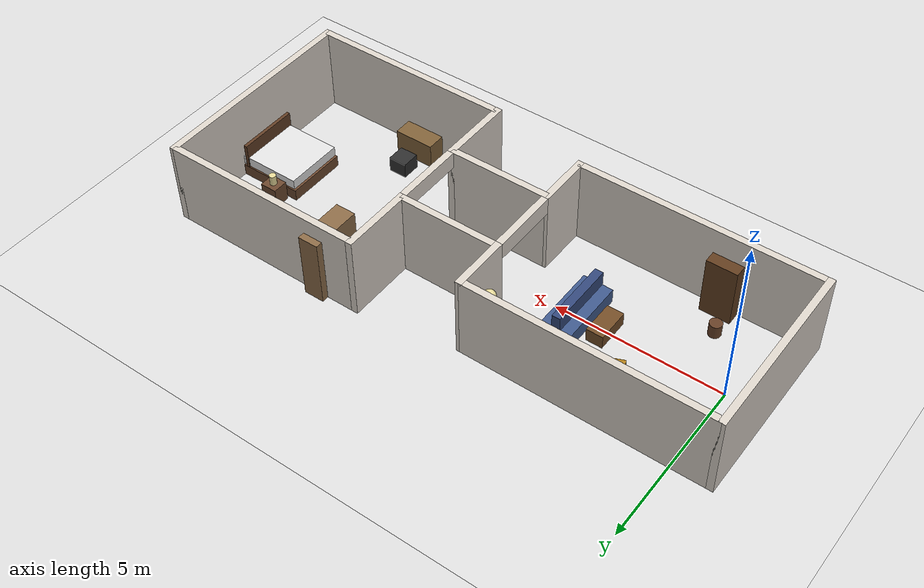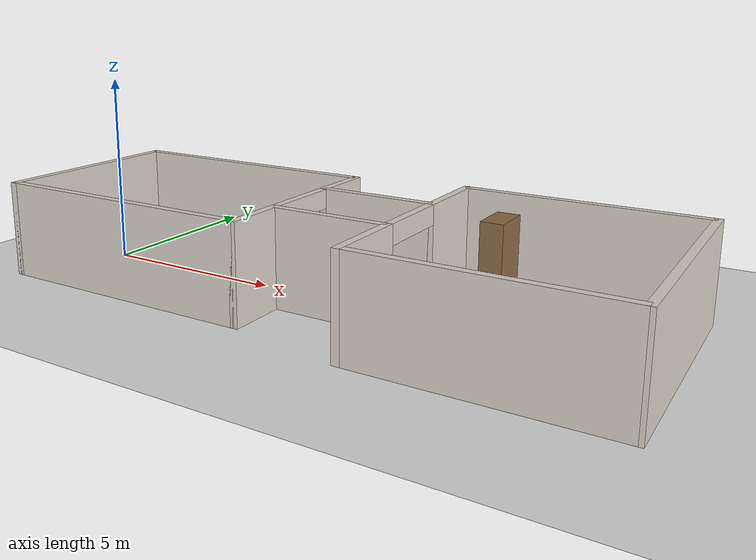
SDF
<?xml version="1.0" ?>
<sdf version="1.8">
  <world name="living_room">

    <!--  FLOOR PLAN (top-down view, Z up, not to scale)              -->
    <!--  2.6 +__________LR left wall__________+                    -->
    <!--      |                                  +__-hall top__+        -->
    <!--      |     LIVING ROOM                  | HALLWAY   |1.1     -->
    <!--      |     Y=[-2.5, 2.5]               |           | BEDROOM -->
    <!--      |                                  +__hall bot-+X=[9,15] -->
    <!--      |     Robot spawns at (0,0,0.1)    |            Y=[-3,3] -->
    <!--  -2.6+__________LR right wall__________+                    -->
    <!--  All rooms fully enclosed. Doorways 2.0 m wide centred on Y=0-->
    <!--  LR: 7 m (X) x 5 m (Y)                                       -->
    <!--  Hallway: 3 m (X) x 2 m (Y)                                  -->
    <!--  Bedroom: 6 m (X) x 6 m (Y)                                  -->
    <!--  Wall thickness: 0.2 m. Wall height: 2.5 m.                  -->
    <!--  Wall centerlines offset 0.1 m beyond interior face.         -->

    <!--  PHYSICS                                                      -->
    <physics name="1ms" type="ignored">
      <max_step_size>0.001</max_step_size>
      <real_time_factor>1.0</real_time_factor>
    </physics>

    <gravity>0 0 -9.81</gravity>

    <!--  WORLD-LEVEL SYSTEM PLUGINS                                   -->
    <plugin filename="gz-sim-physics-system"
            name="gz::sim::systems::Physics"/>
    <plugin filename="gz-sim-user-commands-system"
            name="gz::sim::systems::UserCommands"/>
    <plugin filename="gz-sim-scene-broadcaster-system"
            name="gz::sim::systems::SceneBroadcaster"/>
    <plugin filename="gz-sim-contact-system"
            name="gz::sim::systems::Contact"/>
    <!-- Required for gpu_lidar: manages GPU render pipeline -->
    <plugin filename="gz-sim-sensors-system"
            name="gz::sim::systems::Sensors">
      <render_engine>ogre2</render_engine>
    </plugin>
    <plugin filename="gz-sim-imu-system"
            name="gz::sim::systems::Imu"/>

    <!--  LIGHTING                                                     -->
    <light type="directional" name="sun">
      <cast_shadows>true</cast_shadows>
      <pose>5 0 10 0 0 0</pose>
      <diffuse>0.9 0.9 0.9 1</diffuse>
      <specular>0.3 0.3 0.3 1</specular>
      <direction>-0.5 0.1 -0.9</direction>
      <attenuation>
        <range>1000</range>
        <constant>0.9</constant>
        <linear>0.01</linear>
        <quadratic>0.001</quadratic>
      </attenuation>
    </light>

    <light type="point" name="lr_fill">
      <pose>2.5 0 2.3 0 0 0</pose>
      <diffuse>0.45 0.43 0.40 1</diffuse>
      <specular>0.1 0.1 0.1 1</specular>
      <attenuation>
        <range>15</range>
        <constant>0.5</constant>
        <linear>0.03</linear>
        <quadratic>0.01</quadratic>
      </attenuation>
      <cast_shadows>false</cast_shadows>
    </light>

    <light type="point" name="br_fill">
      <pose>12 0 2.3 0 0 0</pose>
      <diffuse>0.45 0.43 0.40 1</diffuse>
      <specular>0.1 0.1 0.1 1</specular>
      <attenuation>
        <range>15</range>
        <constant>0.5</constant>
        <linear>0.03</linear>
        <quadratic>0.01</quadratic>
      </attenuation>
      <cast_shadows>false</cast_shadows>
    </light>

    <!--  GROUND PLANE                                                 -->
    <model name="ground_plane">
      <static>true</static>
      <link name="link">
        <collision name="collision">
          <geometry>
            <plane>
              <normal>0 0 1</normal>
              <size>100 100</size>
            </plane>
          </geometry>
          <surface>
            <friction>
              <ode><mu>100</mu><mu2>50</mu2></ode>
            </friction>
          </surface>
        </collision>
        <visual name="visual">
          <geometry>
            <plane>
              <normal>0 0 1</normal>
              <size>100 100</size>
            </plane>
          </geometry>
          <material>
            <ambient>0.87 0.87 0.87 1</ambient>
            <diffuse>0.87 0.87 0.87 1</diffuse>
            <specular>0.01 0.01 0.01 1</specular>
          </material>
        </visual>
      </link>
    </model>

    <!--  WALL MATERIAL MACRO                                          -->
    <!--  Warm off-white plaster, consistent across all walls.        -->
    <!--  Declared once via SDF model reuse (each wall is a model).   -->

    <!--  LIVING ROOM WALLS                                            -->
    <!--  Interior: X=[-1.0, 6.0], Y=[-2.5, +2.5]                   -->
    <!--  Wall centerlines: X=-1.1, X=6.1, Y=+2.6, Y=-2.6           -->

    <!-- LR Front wall: X=-1.1, full width Y=[-2.7, +2.7]            -->
    <model name="lr_front_wall">
      <static>true</static>
      <pose>-1.1 0 1.25 0 0 0</pose>
      <link name="link">
        <collision name="collision">
          <geometry><box><size>0.2 5.4 2.5</size></box></geometry>
        </collision>
        <visual name="visual">
          <geometry><box><size>0.2 5.4 2.5</size></box></geometry>
          <material>
            <ambient>0.86 0.83 0.79 1</ambient>
            <diffuse>0.86 0.83 0.79 1</diffuse>
            <specular>0.02 0.02 0.02 1</specular>
          </material>
        </visual>
      </link>
    </model>

    <!-- LR Left wall: Y=+2.6, spans X=[-1.1, 6.1], length=7.2 m    -->
    <model name="lr_left_wall">
      <static>true</static>
      <pose>2.5 2.6 1.25 0 0 0</pose>
      <link name="link">
        <collision name="collision">
          <geometry><box><size>7.2 0.2 2.5</size></box></geometry>
        </collision>
        <visual name="visual">
          <geometry><box><size>7.2 0.2 2.5</size></box></geometry>
          <material>
            <ambient>0.86 0.83 0.79 1</ambient>
            <diffuse>0.86 0.83 0.79 1</diffuse>
            <specular>0.02 0.02 0.02 1</specular>
          </material>
        </visual>
      </link>
    </model>

    <!-- LR Right wall: Y=-2.6, spans X=[-1.1, 6.1], length=7.2 m   -->
    <model name="lr_right_wall">
      <static>true</static>
      <pose>2.5 -2.6 1.25 0 0 0</pose>
      <link name="link">
        <collision name="collision">
          <geometry><box><size>7.2 0.2 2.5</size></box></geometry>
        </collision>
        <visual name="visual">
          <geometry><box><size>7.2 0.2 2.5</size></box></geometry>
          <material>
            <ambient>0.86 0.83 0.79 1</ambient>
            <diffuse>0.86 0.83 0.79 1</diffuse>
            <specular>0.02 0.02 0.02 1</specular>
          </material>
        </visual>
      </link>
    </model>

    <!-- LR Back wall — UPPER segment: X=6.1, Y=[+1.0, +2.7]         -->
    <!-- Doorway opening: Y=[-1.0, +1.0] (2.0 m wide)                -->
    <model name="lr_back_wall_upper">
      <static>true</static>
      <pose>6.1 1.85 1.25 0 0 0</pose>
      <link name="link">
        <collision name="collision">
          <geometry><box><size>0.2 1.7 2.5</size></box></geometry>
        </collision>
        <visual name="visual">
          <geometry><box><size>0.2 1.7 2.5</size></box></geometry>
          <material>
            <ambient>0.86 0.83 0.79 1</ambient>
            <diffuse>0.86 0.83 0.79 1</diffuse>
            <specular>0.02 0.02 0.02 1</specular>
          </material>
        </visual>
      </link>
    </model>

    <!-- LR Back wall — LOWER segment: X=6.1, Y=[-2.7, -1.0]         -->
    <model name="lr_back_wall_lower">
      <static>true</static>
      <pose>6.1 -1.85 1.25 0 0 0</pose>
      <link name="link">
        <collision name="collision">
          <geometry><box><size>0.2 1.7 2.5</size></box></geometry>
        </collision>
        <visual name="visual">
          <geometry><box><size>0.2 1.7 2.5</size></box></geometry>
          <material>
            <ambient>0.86 0.83 0.79 1</ambient>
            <diffuse>0.86 0.83 0.79 1</diffuse>
            <specular>0.02 0.02 0.02 1</specular>
          </material>
        </visual>
      </link>
    </model>

    <!-- Door lintel above LR->hallway doorway (visual only)          -->
    <!-- Spans full doorway width at ceiling height                   -->
    <model name="lr_hall_lintel">
      <static>true</static>
      <pose>6.1 0 2.25 0 0 0</pose>
      <link name="link">
        <collision name="collision">
          <geometry><box><size>0.2 2.0 0.5</size></box></geometry>
        </collision>
        <visual name="visual">
          <geometry><box><size>0.2 2.0 0.5</size></box></geometry>
          <material>
            <ambient>0.86 0.83 0.79 1</ambient>
            <diffuse>0.86 0.83 0.79 1</diffuse>
            <specular>0.02 0.02 0.02 1</specular>
          </material>
        </visual>
      </link>
    </model>

    <!--  HALLWAY WALLS                                                -->
    <!--  Interior: X=[6.0, 9.0], Y=[-1.0, +1.0]                    -->
    <!--  Wall centerlines: Y=+1.1, Y=-1.1                           -->

    <!-- Hallway top wall: Y=+1.1, spans X=[6.1, 9.1], length=3.0 m  -->
    <model name="hall_top_wall">
      <static>true</static>
      <pose>7.6 1.1 1.25 0 0 0</pose>
      <link name="link">
        <collision name="collision">
          <geometry><box><size>3.0 0.2 2.5</size></box></geometry>
        </collision>
        <visual name="visual">
          <geometry><box><size>3.0 0.2 2.5</size></box></geometry>
          <material>
            <ambient>0.86 0.83 0.79 1</ambient>
            <diffuse>0.86 0.83 0.79 1</diffuse>
            <specular>0.02 0.02 0.02 1</specular>
          </material>
        </visual>
      </link>
    </model>

    <!-- Hallway bottom wall: Y=-1.1, spans X=[6.1, 9.1], length=3.0 -->
    <model name="hall_bottom_wall">
      <static>true</static>
      <pose>7.6 -1.1 1.25 0 0 0</pose>
      <link name="link">
        <collision name="collision">
          <geometry><box><size>3.0 0.2 2.5</size></box></geometry>
        </collision>
        <visual name="visual">
          <geometry><box><size>3.0 0.2 2.5</size></box></geometry>
          <material>
            <ambient>0.86 0.83 0.79 1</ambient>
            <diffuse>0.86 0.83 0.79 1</diffuse>
            <specular>0.02 0.02 0.02 1</specular>
          </material>
        </visual>
      </link>
    </model>

    <!--  BEDROOM WALLS                                                -->
    <!--  Interior: X=[9.0, 15.0], Y=[-3.0, +3.0]                   -->
    <!--  Wall centerlines: X=9.1, X=15.1, Y=+3.1, Y=-3.1           -->

    <!-- BR Front wall — UPPER segment: X=9.1, Y=[+1.0, +3.2]        -->
    <!-- Doorway opening: Y=[-1.0, +1.0] (2.0 m wide, aligned)       -->
    <model name="br_front_wall_upper">
      <static>true</static>
      <pose>9.1 2.1 1.25 0 0 0</pose>
      <link name="link">
        <collision name="collision">
          <geometry><box><size>0.2 2.2 2.5</size></box></geometry>
        </collision>
        <visual name="visual">
          <geometry><box><size>0.2 2.2 2.5</size></box></geometry>
          <material>
            <ambient>0.86 0.83 0.79 1</ambient>
            <diffuse>0.86 0.83 0.79 1</diffuse>
            <specular>0.02 0.02 0.02 1</specular>
          </material>
        </visual>
      </link>
    </model>

    <!-- BR Front wall — LOWER segment: X=9.1, Y=[-3.2, -1.0]        -->
    <model name="br_front_wall_lower">
      <static>true</static>
      <pose>9.1 -2.1 1.25 0 0 0</pose>
      <link name="link">
        <collision name="collision">
          <geometry><box><size>0.2 2.2 2.5</size></box></geometry>
        </collision>
        <visual name="visual">
          <geometry><box><size>0.2 2.2 2.5</size></box></geometry>
          <material>
            <ambient>0.86 0.83 0.79 1</ambient>
            <diffuse>0.86 0.83 0.79 1</diffuse>
            <specular>0.02 0.02 0.02 1</specular>
          </material>
        </visual>
      </link>
    </model>

    <!-- Door lintel above hallway->BR doorway                        -->
    <model name="br_hall_lintel">
      <static>true</static>
      <pose>9.1 0 2.25 0 0 0</pose>
      <link name="link">
        <collision name="collision">
          <geometry><box><size>0.2 2.0 0.5</size></box></geometry>
        </collision>
        <visual name="visual">
          <geometry><box><size>0.2 2.0 0.5</size></box></geometry>
          <material>
            <ambient>0.86 0.83 0.79 1</ambient>
            <diffuse>0.86 0.83 0.79 1</diffuse>
            <specular>0.02 0.02 0.02 1</specular>
          </material>
        </visual>
      </link>
    </model>

    <!-- BR Left wall: Y=+3.1, spans X=[9.1, 15.1], length=6.0 m    -->
    <model name="br_left_wall">
      <static>true</static>
      <pose>12.1 3.1 1.25 0 0 0</pose>
      <link name="link">
        <collision name="collision">
          <geometry><box><size>6.0 0.2 2.5</size></box></geometry>
        </collision>
        <visual name="visual">
          <geometry><box><size>6.0 0.2 2.5</size></box></geometry>
          <material>
            <ambient>0.86 0.83 0.79 1</ambient>
            <diffuse>0.86 0.83 0.79 1</diffuse>
            <specular>0.02 0.02 0.02 1</specular>
          </material>
        </visual>
      </link>
    </model>

    <!-- BR Right wall: Y=-3.1, spans X=[9.1, 15.1], length=6.0 m   -->
    <model name="br_right_wall">
      <static>true</static>
      <pose>12.1 -3.1 1.25 0 0 0</pose>
      <link name="link">
        <collision name="collision">
          <geometry><box><size>6.0 0.2 2.5</size></box></geometry>
        </collision>
        <visual name="visual">
          <geometry><box><size>6.0 0.2 2.5</size></box></geometry>
          <material>
            <ambient>0.86 0.83 0.79 1</ambient>
            <diffuse>0.86 0.83 0.79 1</diffuse>
            <specular>0.02 0.02 0.02 1</specular>
          </material>
        </visual>
      </link>
    </model>

    <!-- BR Back wall: X=15.1, full Y width Y=[-3.2, +3.2]           -->
    <model name="br_back_wall">
      <static>true</static>
      <pose>15.1 0 1.25 0 0 0</pose>
      <link name="link">
        <collision name="collision">
          <geometry><box><size>0.2 6.4 2.5</size></box></geometry>
        </collision>
        <visual name="visual">
          <geometry><box><size>0.2 6.4 2.5</size></box></geometry>
          <material>
            <ambient>0.86 0.83 0.79 1</ambient>
            <diffuse>0.86 0.83 0.79 1</diffuse>
            <specular>0.02 0.02 0.02 1</specular>
          </material>
        </visual>
      </link>
    </model>

    <!--  LIVING ROOM FURNITURE                                        -->
    <!--  All within interior X=[-0.8, 5.8], Y=[-2.2, +2.2]         -->

    <!-- SOFA SEAT: against back wall, centred on Y=0                 -->
    <model name="sofa_seat">
      <static>true</static>
      <pose>4.35 0 0.225 0 0 0</pose>
      <link name="link">
        <collision name="collision">
          <geometry><box><size>0.9 2.0 0.45</size></box></geometry>
        </collision>
        <visual name="visual">
          <geometry><box><size>0.9 2.0 0.45</size></box></geometry>
          <material>
            <ambient>0.25 0.35 0.55 1</ambient>
            <diffuse>0.25 0.35 0.55 1</diffuse>
            <specular>0.02 0.02 0.02 1</specular>
          </material>
        </visual>
      </link>
    </model>

    <!-- SOFA BACKREST                                                 -->
    <model name="sofa_backrest">
      <static>true</static>
      <pose>4.35 0 0.675 0 0 0</pose>
      <link name="link">
        <collision name="collision">
          <geometry><box><size>0.25 2.0 0.45</size></box></geometry>
        </collision>
        <visual name="visual">
          <geometry><box><size>0.25 2.0 0.45</size></box></geometry>
          <material>
            <ambient>0.20 0.28 0.48 1</ambient>
            <diffuse>0.20 0.28 0.48 1</diffuse>
            <specular>0.02 0.02 0.02 1</specular>
          </material>
        </visual>
      </link>
    </model>

    <!-- COFFEE TABLE: in front of sofa                                -->
    <model name="coffee_table">
      <static>true</static>
      <pose>3.5 0 0.2 0 0 0</pose>
      <link name="link">
        <collision name="collision">
          <geometry><box><size>0.5 1.0 0.4</size></box></geometry>
        </collision>
        <visual name="visual">
          <geometry><box><size>0.5 1.0 0.4</size></box></geometry>
          <material>
            <ambient>0.45 0.30 0.15 1</ambient>
            <diffuse>0.45 0.30 0.15 1</diffuse>
            <specular>0.05 0.04 0.02 1</specular>
          </material>
        </visual>
      </link>
    </model>

    <!-- ARMCHAIR: left side, angled toward room centre                -->
    <model name="armchair">
      <static>true</static>
      <pose>4.5 1.8 0.225 0 0 2.967</pose>
      <link name="link">
        <collision name="collision">
          <geometry><box><size>0.8 0.8 0.45</size></box></geometry>
        </collision>
        <visual name="visual">
          <geometry><box><size>0.8 0.8 0.45</size></box></geometry>
          <material>
            <ambient>0.55 0.28 0.20 1</ambient>
            <diffuse>0.55 0.28 0.20 1</diffuse>
            <specular>0.02 0.02 0.02 1</specular>
          </material>
        </visual>
      </link>
    </model>

    <!-- FLOOR LAMP: pole + shade, back-left corner                   -->
    <model name="lr_lamp_pole">
      <static>true</static>
      <pose>5.6 2.1 0.9 0 0 0</pose>
      <link name="link">
        <collision name="collision">
          <geometry><cylinder><radius>0.03</radius><length>1.8</length></cylinder></geometry>
        </collision>
        <visual name="visual">
          <geometry><cylinder><radius>0.03</radius><length>1.8</length></cylinder></geometry>
          <material>
            <ambient>0.15 0.15 0.15 1</ambient>
            <diffuse>0.15 0.15 0.15 1</diffuse>
            <specular>0.3 0.3 0.3 1</specular>
          </material>
        </visual>
      </link>
    </model>

    <model name="lr_lamp_shade">
      <static>true</static>
      <pose>5.6 2.1 1.85 0 0 0</pose>
      <link name="link">
        <collision name="collision">
          <geometry><sphere><radius>0.18</radius></sphere></geometry>
        </collision>
        <visual name="visual">
          <geometry><sphere><radius>0.18</radius></sphere></geometry>
          <material>
            <ambient>0.90 0.85 0.60 1</ambient>
            <diffuse>0.90 0.85 0.60 1</diffuse>
            <specular>0.05 0.05 0.05 1</specular>
          </material>
        </visual>
      </link>
    </model>

    <!-- BOOKCASE: against right wall                                  -->
    <model name="bookcase">
      <static>true</static>
      <pose>1.5 -2.275 0.9 0 0 0</pose>
      <link name="link">
        <collision name="collision">
          <geometry><box><size>0.9 0.35 1.8</size></box></geometry>
        </collision>
        <visual name="visual">
          <geometry><box><size>0.9 0.35 1.8</size></box></geometry>
          <material>
            <ambient>0.38 0.24 0.12 1</ambient>
            <diffuse>0.38 0.24 0.12 1</diffuse>
            <specular>0.04 0.03 0.01 1</specular>
          </material>
        </visual>
      </link>
    </model>

    <!-- SCATTERED BOX: mid-room clutter                               -->
    <model name="lr_box_clutter">
      <static>true</static>
      <pose>2.5 0.9 0.15 0 0 0.4</pose>
      <link name="link">
        <collision name="collision">
          <geometry><box><size>0.3 0.3 0.3</size></box></geometry>
        </collision>
        <visual name="visual">
          <geometry><box><size>0.3 0.3 0.3</size></box></geometry>
          <material>
            <ambient>0.70 0.50 0.10 1</ambient>
            <diffuse>0.70 0.50 0.10 1</diffuse>
            <specular>0.02 0.02 0.02 1</specular>
          </material>
        </visual>
      </link>
    </model>

    <!-- PLANT POT: right side, mid-depth                              -->
    <model name="lr_plant_pot">
      <static>true</static>
      <pose>1.2 -1.6 0.2 0 0 0</pose>
      <link name="link">
        <collision name="collision">
          <geometry><cylinder><radius>0.18</radius><length>0.4</length></cylinder></geometry>
        </collision>
        <visual name="visual">
          <geometry><cylinder><radius>0.18</radius><length>0.4</length></cylinder></geometry>
          <material>
            <ambient>0.40 0.25 0.15 1</ambient>
            <diffuse>0.40 0.25 0.15 1</diffuse>
            <specular>0.02 0.02 0.02 1</specular>
          </material>
        </visual>
      </link>
    </model>

    <!-- SIDE TABLE: beside armchair                                   -->
    <model name="lr_side_table">
      <static>true</static>
      <pose>3.8 1.5 0.3 0 0 0</pose>
      <link name="link">
        <collision name="collision">
          <geometry><cylinder><radius>0.25</radius><length>0.6</length></cylinder></geometry>
        </collision>
        <visual name="visual">
          <geometry><cylinder><radius>0.25</radius><length>0.6</length></cylinder></geometry>
          <material>
            <ambient>0.55 0.40 0.25 1</ambient>
            <diffuse>0.55 0.40 0.25 1</diffuse>
            <specular>0.04 0.03 0.02 1</specular>
          </material>
        </visual>
      </link>
    </model>

    <!--  BEDROOM FURNITURE                                            -->
    <!--  All within interior X=[9.2, 14.8], Y=[-2.8, +2.8]         -->

    <!-- BED FRAME: against back wall, centred on Y=0                 -->
    <!-- Size: 2.0 m (X, depth) × 1.8 m (Y, width) × 0.35 m (Z)    -->
    <model name="bed_frame">
      <static>true</static>
      <pose>14.1 0 0.175 0 0 0</pose>
      <link name="link">
        <collision name="collision">
          <geometry><box><size>2.0 1.8 0.35</size></box></geometry>
        </collision>
        <visual name="visual">
          <geometry><box><size>2.0 1.8 0.35</size></box></geometry>
          <material>
            <ambient>0.42 0.28 0.18 1</ambient>
            <diffuse>0.42 0.28 0.18 1</diffuse>
            <specular>0.05 0.03 0.02 1</specular>
          </material>
        </visual>
      </link>
    </model>

    <!-- BED MATTRESS: on top of frame                                 -->
    <model name="bed_mattress">
      <static>true</static>
      <pose>14.1 0 0.525 0 0 0</pose>
      <link name="link">
        <collision name="collision">
          <geometry><box><size>1.9 1.75 0.30</size></box></geometry>
        </collision>
        <visual name="visual">
          <geometry><box><size>1.9 1.75 0.30</size></box></geometry>
          <material>
            <ambient>0.88 0.88 0.88 1</ambient>
            <diffuse>0.88 0.88 0.88 1</diffuse>
            <specular>0.02 0.02 0.02 1</specular>
          </material>
        </visual>
      </link>
    </model>

    <!-- BED HEADBOARD: against back wall                             -->
    <model name="bed_headboard">
      <static>true</static>
      <pose>14.85 0 0.725 0 0 0</pose>
      <link name="link">
        <collision name="collision">
          <geometry><box><size>0.1 1.8 0.75</size></box></geometry>
        </collision>
        <visual name="visual">
          <geometry><box><size>0.1 1.8 0.75</size></box></geometry>
          <material>
            <ambient>0.38 0.24 0.14 1</ambient>
            <diffuse>0.38 0.24 0.14 1</diffuse>
            <specular>0.05 0.03 0.02 1</specular>
          </material>
        </visual>
      </link>
    </model>

    <!-- NIGHTSTAND: beside bed, left side                             -->
    <model name="nightstand">
      <static>true</static>
      <pose>13.6 1.2 0.3 0 0 0</pose>
      <link name="link">
        <collision name="collision">
          <geometry><box><size>0.5 0.45 0.6</size></box></geometry>
        </collision>
        <visual name="visual">
          <geometry><box><size>0.5 0.45 0.6</size></box></geometry>
          <material>
            <ambient>0.42 0.28 0.18 1</ambient>
            <diffuse>0.42 0.28 0.18 1</diffuse>
            <specular>0.05 0.03 0.02 1</specular>
          </material>
        </visual>
      </link>
    </model>

    <!-- TABLE LAMP on nightstand                                      -->
    <model name="br_table_lamp">
      <static>true</static>
      <pose>13.6 1.2 0.75 0 0 0</pose>
      <link name="link">
        <collision name="collision">
          <geometry><cylinder><radius>0.10</radius><length>0.30</length></cylinder></geometry>
        </collision>
        <visual name="visual">
          <geometry><cylinder><radius>0.10</radius><length>0.30</length></cylinder></geometry>
          <material>
            <ambient>0.90 0.85 0.60 1</ambient>
            <diffuse>0.90 0.85 0.60 1</diffuse>
            <specular>0.05 0.05 0.05 1</specular>
          </material>
        </visual>
      </link>
    </model>

    <!-- WARDROBE: against left wall                                   -->
    <!-- Size: 0.6 m (X, depth) × 1.5 m (Y, width) × 2.0 m (Z)     -->
    <model name="wardrobe">
      <static>true</static>
      <pose>10.3 2.65 1.0 0 0 0</pose>
      <link name="link">
        <collision name="collision">
          <geometry><box><size>0.6 1.5 2.0</size></box></geometry>
        </collision>
        <visual name="visual">
          <geometry><box><size>0.6 1.5 2.0</size></box></geometry>
          <material>
            <ambient>0.55 0.42 0.28 1</ambient>
            <diffuse>0.55 0.42 0.28 1</diffuse>
            <specular>0.06 0.05 0.03 1</specular>
          </material>
        </visual>
      </link>
    </model>

    <!-- DESK: against right wall                                      -->
    <!-- Size: 1.2 m (X) × 0.55 m (Y, depth) × 0.75 m (Z)          -->
    <model name="desk">
      <static>true</static>
      <pose>11.5 -2.675 0.375 0 0 0</pose>
      <link name="link">
        <collision name="collision">
          <geometry><box><size>1.2 0.55 0.75</size></box></geometry>
        </collision>
        <visual name="visual">
          <geometry><box><size>1.2 0.55 0.75</size></box></geometry>
          <material>
            <ambient>0.50 0.38 0.22 1</ambient>
            <diffuse>0.50 0.38 0.22 1</diffuse>
            <specular>0.05 0.04 0.02 1</specular>
          </material>
        </visual>
      </link>
    </model>

    <!-- DESK CHAIR: in front of desk                                  -->
    <model name="desk_chair">
      <static>true</static>
      <pose>11.5 -1.9 0.225 0 0 0</pose>
      <link name="link">
        <collision name="collision">
          <geometry><box><size>0.55 0.55 0.45</size></box></geometry>
        </collision>
        <visual name="visual">
          <geometry><box><size>0.55 0.55 0.45</size></box></geometry>
          <material>
            <ambient>0.18 0.18 0.18 1</ambient>
            <diffuse>0.18 0.18 0.18 1</diffuse>
            <specular>0.10 0.10 0.10 1</specular>
          </material>
        </visual>
      </link>
    </model>

    <!-- BEDROOM PLANT: corner near door                               -->
    <model name="br_plant_pot">
      <static>true</static>
      <pose>9.5 2.6 0.2 0 0 0</pose>
      <link name="link">
        <collision name="collision">
          <geometry><cylinder><radius>0.16</radius><length>0.4</length></cylinder></geometry>
        </collision>
        <visual name="visual">
          <geometry><cylinder><radius>0.16</radius><length>0.4</length></cylinder></geometry>
          <material>
            <ambient>0.35 0.22 0.12 1</ambient>
            <diffuse>0.35 0.22 0.12 1</diffuse>
            <specular>0.02 0.02 0.02 1</specular>
          </material>
        </visual>
      </link>
    </model>

  </world>
</sdf>
